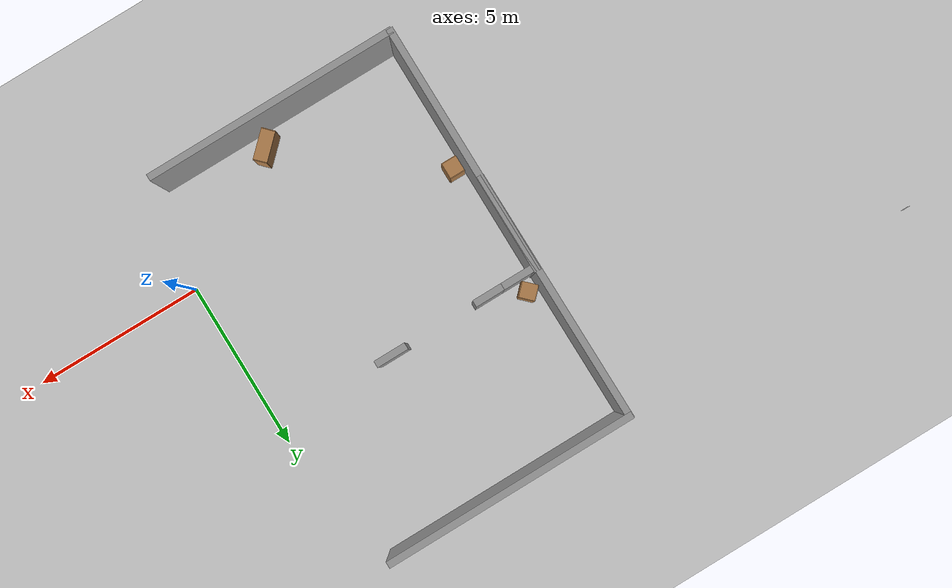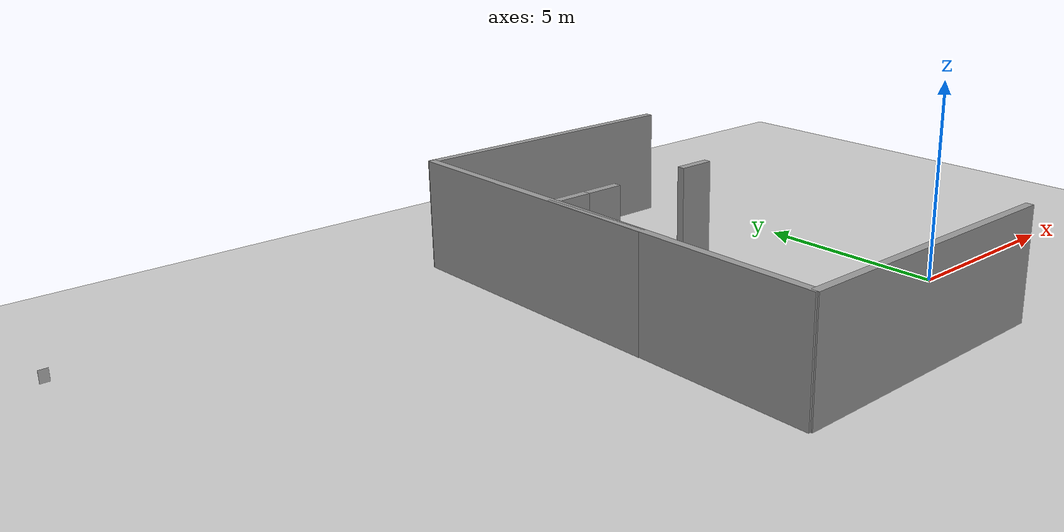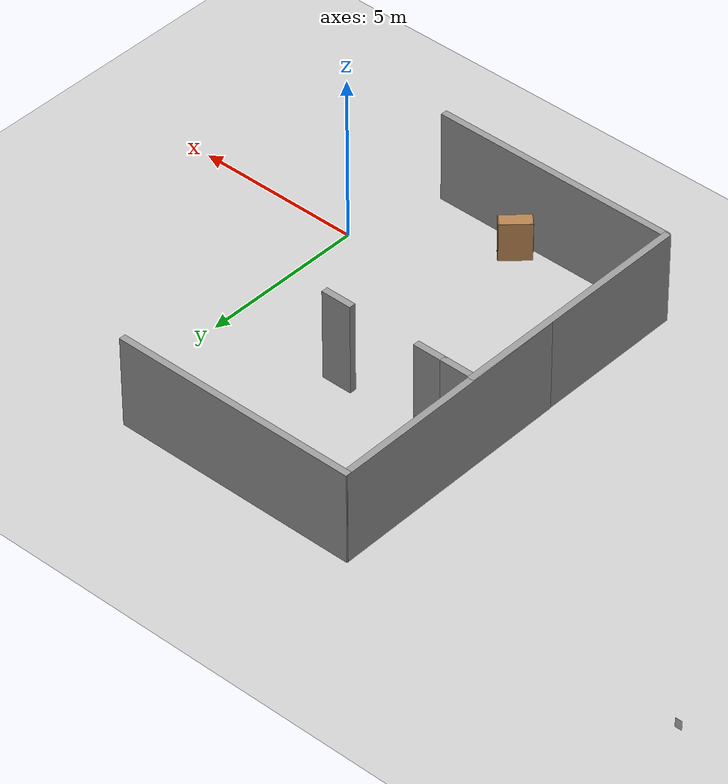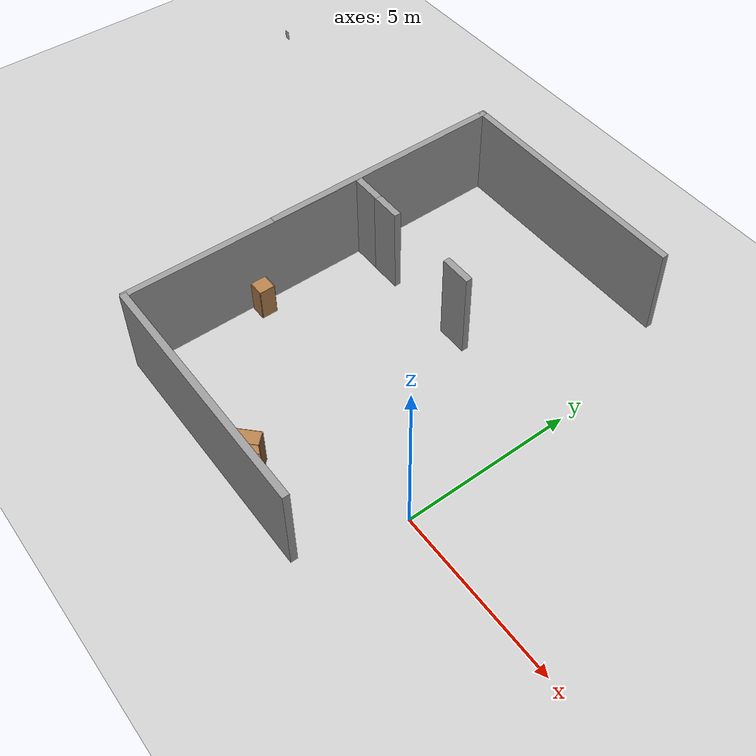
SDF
<sdf version="1.4">
 <world name="default">
  <model name="ground_plane">
   <static>1</static>
   <link name="link">
    <collision name="collision">
     <geometry><plane><normal>0 0 1</normal><size>100 100</size></plane></geometry>
     <surface><friction><ode><mu>100</mu><mu2>50</mu2></ode></friction></surface>
    </collision>
    <visual name="visual">
     <cast_shadows>0</cast_shadows>
     <geometry><plane><normal>0 0 1</normal><size>100 100</size></plane></geometry>
     <material>
      <script><uri>file://media/materials/scripts/gazebo.material</uri><name>Gazebo/Grey</name></script>
     </material>
    </visual>
    <velocity_decay><linear>0</linear><angular>0</angular></velocity_decay>
   </link>
  </model>
  <model name="grey_wall_0">
   <static>1</static>
   <link name="link">
    <pose>0 0 1.4 0 -0 0</pose>
    <collision name="collision"><geometry><box><size>7.5 0.2 2.8</size></box></geometry></collision>
    <visual name="visual">
     <cast_shadows>0</cast_shadows>
     <geometry><box><size>7.5 0.2 2.8</size></box></geometry>
     <material>
      <script>
       <uri>model://grey_wall/materials/scripts</uri>
       <uri>model://grey_wall/materials/textures</uri>
       <name>vrc/grey_wall</name>
      </script>
     </material>
    </visual>
    <velocity_decay><linear>0</linear><angular>0</angular></velocity_decay>
   </link>
   <pose>-4.53321 -2.83506 0 0 -0 0</pose>
  </model>
  <model name="grey_wall_1">
   <static>1</static>
   <link name="link">
    <pose>0 0 1.4 0 -0 0</pose>
    <collision name="collision"><geometry><box><size>7.5 0.2 2.8</size></box></geometry></collision>
    <visual name="visual">
     <cast_shadows>0</cast_shadows>
     <geometry><box><size>7.5 0.2 2.8</size></box></geometry>
     <material>
      <script>
       <uri>model://grey_wall/materials/scripts</uri>
       <uri>model://grey_wall/materials/textures</uri>
       <name>vrc/grey_wall</name>
      </script>
     </material>
    </visual>
    <velocity_decay><linear>0</linear><angular>0</angular></velocity_decay>
   </link>
   <pose>-8.23248 0.854179 0 0 0 -1.57181</pose>
  </model>
  <model name="grey_wall_8">
   <static>1</static>
   <link name="link">
    <pose>0 0 1.4 0 -0 0</pose>
    <collision name="collision"><geometry><box><size>7.5 0.2 2.8</size></box></geometry></collision>
    <visual name="visual">
     <cast_shadows>0</cast_shadows>
     <geometry><box><size>7.5 0.2 2.8</size></box></geometry>
     <material>
      <script>
       <uri>model://grey_wall/materials/scripts</uri>
       <uri>model://grey_wall/materials/textures</uri>
       <name>vrc/grey_wall</name>
      </script>
     </material>
    </visual>
    <velocity_decay><linear>0</linear><angular>0</angular></velocity_decay>
   </link>
   <pose>-8.25909 5.41188 0 0 -0 1.5757</pose>
  </model>
  <model name="grey_wall_9">
   <static>1</static>
   <link name="link">
    <pose>0 0 1.4 0 -0 0</pose>
    <collision name="collision"><geometry><box><size>7.5 0.2 2.8</size></box></geometry></collision>
    <visual name="visual">
     <cast_shadows>0</cast_shadows>
     <geometry><box><size>7.5 0.2 2.8</size></box></geometry>
     <material>
      <script>
       <uri>model://grey_wall/materials/scripts</uri>
       <uri>model://grey_wall/materials/textures</uri>
       <name>vrc/grey_wall</name>
      </script>
     </material>
    </visual>
    <velocity_decay><linear>0</linear><angular>0</angular></velocity_decay>
   </link>
   <pose>-4.6171 9.09785 0 0 -0 0</pose>
  </model>
  <model name="cabinet_0">
   <static>1</static>
   <link name="cabinet_bottom_plate">
    <inertial>
     <pose>0 0 -1 0 -0 0</pose>
     <inertia><ixx>2.05</ixx><ixy>0</ixy><ixz>0</ixz><iyy>2.05</iyy><iyz>0</iyz><izz>2.05</izz></inertia>
     <mass>25</mass>
    </inertial>
    <collision name="cabinet_bottom_plate_geom">
     <pose>0 0 0.01 0 -0 0</pose>
     <geometry><box><size>0.45 0.45 0.02</size></box></geometry>
    </collision>
    <visual name="cabinet_bottom_plate_geom_visual">
     <pose>0 0 0.01 0 -0 0</pose>
     <geometry><box><size>0.45 0.45 0.02</size></box></geometry>
     <material>
      <script><uri>file://media/materials/scripts/gazebo.material</uri><name>Gazebo/Wood</name></script>
     </material>
    </visual>
    <collision name="cabinet_bottom_plate_geom_cabinet_back_plate">
     <pose>0.235 0 0.51 0 -0 0</pose>
     <geometry><box><size>0.02 0.45 1.02</size></box></geometry>
    </collision>
    <visual name="cabinet_bottom_plate_geom_cabinet_back_plate_visual">
     <pose>0.235 0 0.51 0 -0 0</pose>
     <geometry><box><size>0.02 0.45 1.02</size></box></geometry>
     <material>
      <script><uri>file://media/materials/scripts/gazebo.material</uri><name>Gazebo/Wood</name></script>
     </material>
    </visual>
    <collision name="cabinet_bottom_plate_geom_cabinet_left_plate">
     <pose>0 0.235 0.51 0 -0 0</pose>
     <geometry><box><size>0.45 0.02 1.02</size></box></geometry>
    </collision>
    <visual name="cabinet_bottom_plate_geom_cabinet_left_plate_visual">
     <pose>0 0.235 0.51 0 -0 0</pose>
     <geometry><box><size>0.45 0.02 1.02</size></box></geometry>
     <material>
      <script><uri>file://media/materials/scripts/gazebo.material</uri><name>Gazebo/Wood</name></script>
     </material>
    </visual>
    <collision name="cabinet_bottom_plate_geom_cabinet_middle_plate">
     <pose>0 0 0.51 0 -0 0</pose>
     <geometry><box><size>0.45 0.45 0.02</size></box></geometry>
    </collision>
    <visual name="cabinet_bottom_plate_geom_cabinet_middle_plate_visual">
     <pose>0 0 0.51 0 -0 0</pose>
     <geometry><box><size>0.45 0.45 0.02</size></box></geometry>
     <material>
      <script><uri>file://media/materials/scripts/gazebo.material</uri><name>Gazebo/Wood</name></script>
     </material>
    </visual>
    <collision name="cabinet_bottom_plate_geom_cabinet_right_plate">
     <pose>0 -0.235 0.51 0 -0 0</pose>
     <geometry><box><size>0.45 0.02 1.02</size></box></geometry>
    </collision>
    <visual name="cabinet_bottom_plate_geom_cabinet_right_plate_visual">
     <pose>0 -0.235 0.51 0 -0 0</pose>
     <geometry><box><size>0.45 0.02 1.02</size></box></geometry>
     <material>
      <script><uri>file://media/materials/scripts/gazebo.material</uri><name>Gazebo/Wood</name></script>
     </material>
    </visual>
    <collision name="cabinet_bottom_plate_geom_cabinet_top_plate">
     <pose>0 0 1.01 0 -0 0</pose>
     <geometry><box><size>0.45 0.45 0.02</size></box></geometry>
    </collision>
    <visual name="cabinet_bottom_plate_geom_cabinet_top_plate_visual">
     <pose>0 0 1.01 0 -0 0</pose>
     <geometry><box><size>0.45 0.45 0.02</size></box></geometry>
     <material>
      <script><uri>file://media/materials/scripts/gazebo.material</uri><name>Gazebo/Wood</name></script>
     </material>
    </visual>
    <velocity_decay><linear>0</linear><angular>0</angular></velocity_decay>
   </link>
   <pose>-7.86683 0.925523 0 0 -0 0</pose>
  </model>
  <model name="bookshelf_0">
   <static>1</static>
   <link name="link">
    <inertial><mass>1</mass></inertial>
    <collision name="back">
     <pose>0 0.005 0.6 0 -0 0</pose>
     <geometry><box><size>0.9 0.01 1.2</size></box></geometry>
    </collision>
    <visual name="visual1">
     <pose>0 0.005 0.6 0 -0 0</pose>
     <geometry><box><size>0.9 0.01 1.2</size></box></geometry>
     <material>
      <script><uri>file://media/materials/scripts/gazebo.material</uri><name>Gazebo/Wood</name></script>
     </material>
    </visual>
    <collision name="left_side">
     <pose>0.45 -0.195 0.6 0 -0 0</pose>
     <geometry><box><size>0.02 0.4 1.2</size></box></geometry>
    </collision>
    <visual name="visual2">
     <pose>0.45 -0.195 0.6 0 -0 0</pose>
     <geometry><box><size>0.02 0.4 1.2</size></box></geometry>
     <material>
      <script><uri>file://media/materials/scripts/gazebo.material</uri><name>Gazebo/Wood</name></script>
     </material>
    </visual>
    <collision name="right_side">
     <pose>-0.45 -0.195 0.6 0 -0 0</pose>
     <geometry><box><size>0.02 0.4 1.2</size></box></geometry>
    </collision>
    <visual name="visual3">
     <pose>-0.45 -0.195 0.6 0 -0 0</pose>
     <geometry><box><size>0.02 0.4 1.2</size></box></geometry>
     <material>
      <script><uri>file://media/materials/scripts/gazebo.material</uri><name>Gazebo/Wood</name></script>
     </material>
    </visual>
    <collision name="bottom">
     <pose>0 -0.195 0.03 0 -0 0</pose>
     <geometry><box><size>0.88 0.4 0.06</size></box></geometry>
    </collision>
    <visual name="visual4">
     <pose>0 -0.195 0.03 0 -0 0</pose>
     <geometry><box><size>0.88 0.4 0.06</size></box></geometry>
     <material>
      <script><uri>file://media/materials/scripts/gazebo.material</uri><name>Gazebo/Wood</name></script>
     </material>
    </visual>
    <collision name="top">
     <pose>0 -0.195 1.19 0 -0 0</pose>
     <geometry><box><size>0.88 0.4 0.02</size></box></geometry>
    </collision>
    <visual name="visual5">
     <pose>0 -0.195 1.19 0 -0 0</pose>
     <geometry><box><size>0.88 0.4 0.02</size></box></geometry>
     <material>
      <script><uri>file://media/materials/scripts/gazebo.material</uri><name>Gazebo/Wood</name></script>
     </material>
    </visual>
    <collision name="low_shelf">
     <pose>0 -0.195 0.43 0 -0 0</pose>
     <geometry><box><size>0.88 0.4 0.02</size></box></geometry>
    </collision>
    <visual name="visual6">
     <pose>0 -0.195 0.43 0 -0 0</pose>
     <geometry><box><size>0.88 0.4 0.02</size></box></geometry>
     <material>
      <script><uri>file://media/materials/scripts/gazebo.material</uri><name>Gazebo/Wood</name></script>
     </material>
    </visual>
    <collision name="high_shelf">
     <pose>0 -0.195 0.8 0 -0 0</pose>
     <geometry><box><size>0.88 0.4 0.02</size></box></geometry>
    </collision>
    <visual name="visual7">
     <pose>0 -0.195 0.8 0 -0 0</pose>
     <geometry><box><size>0.88 0.4 0.02</size></box></geometry>
     <material>
      <script><uri>file://media/materials/scripts/gazebo.material</uri><name>Gazebo/Wood</name></script>
     </material>
    </visual>
    <velocity_decay><linear>0</linear><angular>0</angular></velocity_decay>
   </link>
   <pose>-3.90366 -2.11997 0 0 -0 0.763607</pose>
  </model>
  <model name="grey_wall_small_0">
   <static>1</static>
   <link name="link">
    <pose>0 0 1.4 0 -0 0</pose>
    <collision name="collision"><geometry><box><size>0.9375 0.2 2.8</size></box></geometry></collision>
    <visual name="visual">
     <cast_shadows>0</cast_shadows>
     <geometry><box><size>0.9375 0.2 2.8</size></box></geometry>
     <material>
      <script>
       <uri>model://grey_wall_small/materials/scripts</uri>
       <uri>model://grey_wall_small/materials/textures</uri>
       <name>vrc/grey_wall_small</name>
      </script>
     </material>
    </visual>
    <velocity_decay><linear>0</linear><angular>0</angular></velocity_decay>
   </link>
   <pose>-3.79075 4.47218 0 0 -0 0</pose>
  </model>
  <model name="grey_wall_small_3">
   <static>1</static>
   <link name="link">
    <pose>0 0 1.4 0 -0 0</pose>
    <collision name="collision"><geometry><box><size>0.9375 0.2 2.8</size></box></geometry></collision>
    <visual name="visual">
     <cast_shadows>0</cast_shadows>
     <geometry><box><size>0.9375 0.2 2.8</size></box></geometry>
     <material>
      <script>
       <uri>model://grey_wall_small/materials/scripts</uri>
       <uri>model://grey_wall_small/materials/textures</uri>
       <name>vrc/grey_wall_small</name>
      </script>
     </material>
    </visual>
    <velocity_decay><linear>0</linear><angular>0</angular></velocity_decay>
   </link>
   <pose>-7.6898 4.46929 0 0 -0 0</pose>
  </model>
  <model name="grey_wall_small_4">
   <static>1</static>
   <link name="link">
    <pose>0 0 1.4 0 -0 0</pose>
    <collision name="collision"><geometry><box><size>0.9375 0.2 2.8</size></box></geometry></collision>
    <visual name="visual">
     <cast_shadows>0</cast_shadows>
     <geometry><box><size>0.9375 0.2 2.8</size></box></geometry>
     <material>
      <script>
       <uri>model://grey_wall_small/materials/scripts</uri>
       <uri>model://grey_wall_small/materials/textures</uri>
       <name>vrc/grey_wall_small</name>
      </script>
     </material>
    </visual>
    <velocity_decay><linear>0</linear><angular>0</angular></velocity_decay>
   </link>
   <pose>-6.82457 4.46929 0 0 -0 0</pose>
  </model>
  <model name="green_image">
   <static>1</static>
   <link name="link">
    <collision name="collision"><geometry><box><size>0.174369 8.3e-05 0.132852</size></box></geometry></collision>
    <visual name="visual">
     <cast_shadows>0</cast_shadows>
     <geometry><box><size>0.21 0.0001 0.16</size></box></geometry>
     <material>
      <script>
       <uri>model://green_image/materials/scripts</uri>
       <uri>model://green_image/materials/textures</uri>
       <name>green_image/Image</name>
      </script>
     </material>
    </visual>
    <velocity_decay><linear>0</linear><angular>0</angular></velocity_decay>
   </link>
   <pose>-6.52031 4.57756 0.471349 0 -0 0</pose>
  </model>
  <model name="cabinet_1">
   <static>1</static>
   <link name="cabinet_bottom_plate">
    <inertial>
     <pose>0 0 -1 0 -0 0</pose>
     <inertia><ixx>2.05</ixx><ixy>0</ixy><ixz>0</ixz><iyy>2.05</iyy><iyz>0</iyz><izz>2.05</izz></inertia>
     <mass>25</mass>
    </inertial>
    <collision name="cabinet_bottom_plate_geom">
     <pose>0 0 0.01 0 -0 0</pose>
     <geometry><box><size>0.45 0.45 0.02</size></box></geometry>
    </collision>
    <visual name="cabinet_bottom_plate_geom_visual">
     <pose>0 0 0.01 0 -0 0</pose>
     <geometry><box><size>0.45 0.45 0.02</size></box></geometry>
     <material>
      <script><uri>file://media/materials/scripts/gazebo.material</uri><name>Gazebo/Wood</name></script>
     </material>
    </visual>
    <collision name="cabinet_bottom_plate_geom_cabinet_back_plate">
     <pose>0.235 0 0.51 0 -0 0</pose>
     <geometry><box><size>0.02 0.45 1.02</size></box></geometry>
    </collision>
    <visual name="cabinet_bottom_plate_geom_cabinet_back_plate_visual">
     <pose>0.235 0 0.51 0 -0 0</pose>
     <geometry><box><size>0.02 0.45 1.02</size></box></geometry>
     <material>
      <script><uri>file://media/materials/scripts/gazebo.material</uri><name>Gazebo/Wood</name></script>
     </material>
    </visual>
    <collision name="cabinet_bottom_plate_geom_cabinet_left_plate">
     <pose>0 0.235 0.51 0 -0 0</pose>
     <geometry><box><size>0.45 0.02 1.02</size></box></geometry>
    </collision>
    <visual name="cabinet_bottom_plate_geom_cabinet_left_plate_visual">
     <pose>0 0.235 0.51 0 -0 0</pose>
     <geometry><box><size>0.45 0.02 1.02</size></box></geometry>
     <material>
      <script><uri>file://media/materials/scripts/gazebo.material</uri><name>Gazebo/Wood</name></script>
     </material>
    </visual>
    <collision name="cabinet_bottom_plate_geom_cabinet_middle_plate">
     <pose>0 0 0.51 0 -0 0</pose>
     <geometry><box><size>0.45 0.45 0.02</size></box></geometry>
    </collision>
    <visual name="cabinet_bottom_plate_geom_cabinet_middle_plate_visual">
     <pose>0 0 0.51 0 -0 0</pose>
     <geometry><box><size>0.45 0.45 0.02</size></box></geometry>
     <material>
      <script><uri>file://media/materials/scripts/gazebo.material</uri><name>Gazebo/Wood</name></script>
     </material>
    </visual>
    <collision name="cabinet_bottom_plate_geom_cabinet_right_plate">
     <pose>0 -0.235 0.51 0 -0 0</pose>
     <geometry><box><size>0.45 0.02 1.02</size></box></geometry>
    </collision>
    <visual name="cabinet_bottom_plate_geom_cabinet_right_plate_visual">
     <pose>0 -0.235 0.51 0 -0 0</pose>
     <geometry><box><size>0.45 0.02 1.02</size></box></geometry>
     <material>
      <script><uri>file://media/materials/scripts/gazebo.material</uri><name>Gazebo/Wood</name></script>
     </material>
    </visual>
    <collision name="cabinet_bottom_plate_geom_cabinet_top_plate">
     <pose>0 0 1.01 0 -0 0</pose>
     <geometry><box><size>0.45 0.45 0.02</size></box></geometry>
    </collision>
    <visual name="cabinet_bottom_plate_geom_cabinet_top_plate_visual">
     <pose>0 0 1.01 0 -0 0</pose>
     <geometry><box><size>0.45 0.45 0.02</size></box></geometry>
     <material>
      <script><uri>file://media/materials/scripts/gazebo.material</uri><name>Gazebo/Wood</name></script>
     </material>
    </visual>
    <velocity_decay><linear>0</linear><angular>0</angular></velocity_decay>
   </link>
   <pose>-7.8455 4.90192 0 0 -0 0.78721</pose>
  </model>
  <model name="red_image_0">
   <static>1</static>
   <link name="link">
    <collision name="collision">
     <geometry><plane><normal>0 0 1</normal><size>0.21 0.297</size></plane></geometry>
     <surface><friction><ode><mu>100</mu><mu2>50</mu2></ode></friction></surface>
    </collision>
    <visual name="visual">
     <pose>-6 -0.11 0.4 1.57 -0 0</pose>
     <cast_shadows>0</cast_shadows>
     <geometry><plane><normal>0 0 1</normal><size>0.21 0.297</size></plane></geometry>
     <material>
      <script>
       <uri>model://red_image/materials/scripts</uri>
       <uri>model://red_image/materials/textures</uri>
       <name>red_image/Image</name>
      </script>
     </material>
    </visual>
    <velocity_decay><linear>0</linear><angular>0</angular></velocity_decay>
   </link>
   <pose>-12 8.51815 0 0 -0 0</pose>
  </model>
 </world>
</sdf>
